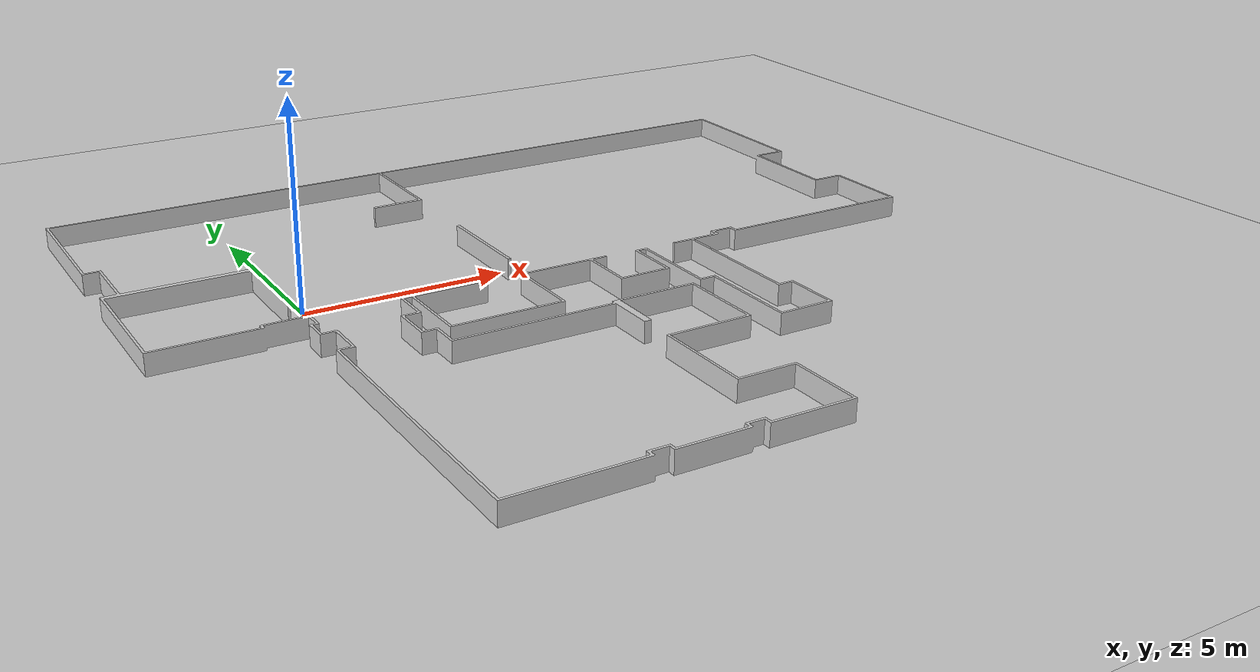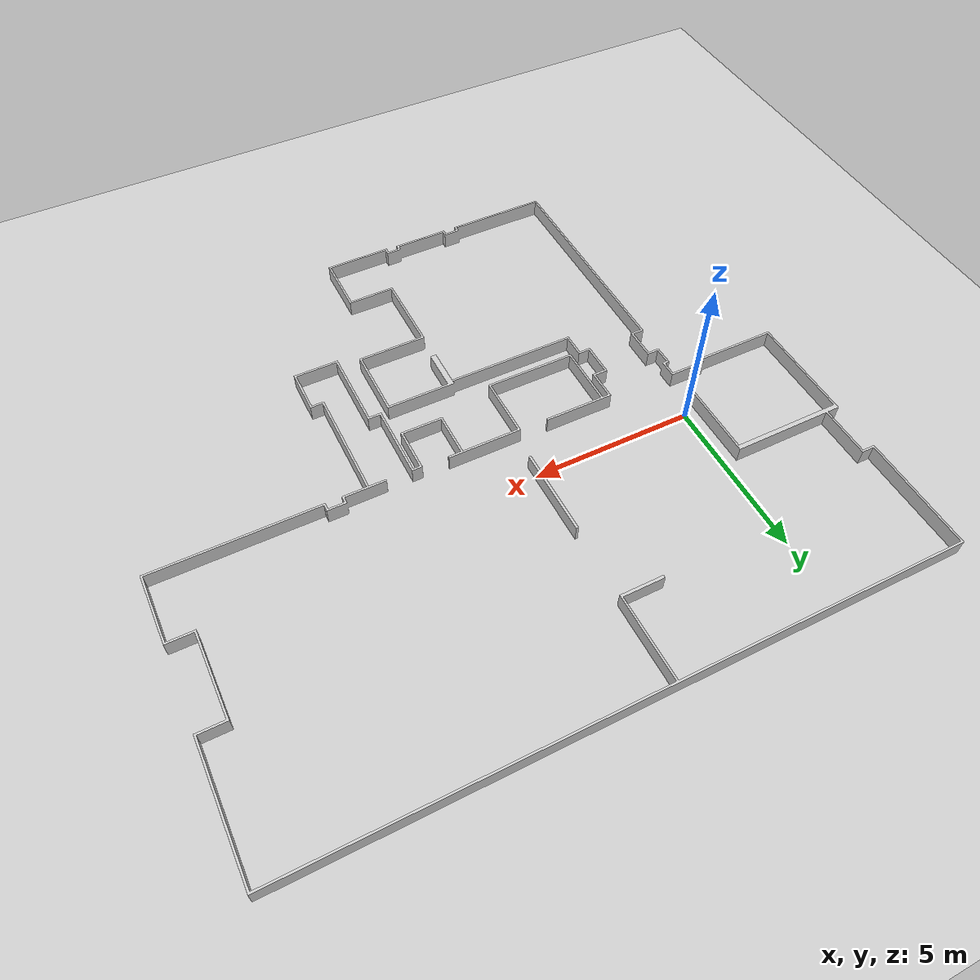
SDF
<?xml version="1.0" ?>

<sdf version="1.8">
  <world name="labfabex_world">

    <light name='sun' type='directional'>
      <cast_shadows>true</cast_shadows>
      <pose>0 0 100 0 0 0</pose>
      <diffuse>0.8 0.8 0.8 1</diffuse>
      <specular>0.2 0.2 0.2 1</specular>
      <attenuation>
        <range>1000</range>
        <constant>0.9</constant>
        <linear>0.01</linear>
        <quadratic>0.001</quadratic>
      </attenuation>
      <direction>-0.5 0.1 -0.9</direction>
    </light>

    <scene>
      <ambient>0.5 0.5 0.5 1</ambient>
      <background>0.7 0.7 0.7 1</background>
      <shadows>true</shadows>
    </scene>

    <gui fullscreen='0'>
      <camera name='user_camera'>
        <pose>10.5 -6.2 16.6 0 0.9 2.5</pose>
        <view_controller>orbit</view_controller>
        <projection_type>perspective</projection_type>
      </camera>
    </gui>

    <model name='ground_plane'>
      <static>true</static>
      <link name='link'>
        <pose>5.95 -1.6 0.0 0.0 0.0 0.0</pose>
        <collision name='collision'>
          <geometry>
            <plane>
              <normal>0 0 1</normal>
              <size>20.4 20.4</size>
            </plane>
          </geometry>
          <surface>
            <friction>
              <ode>
                <mu>100</mu>
                <mu2>50</mu2>
              </ode>
            </friction>
          </surface>
        </collision>
        <visual name='visual'>
          <cast_shadows>false</cast_shadows>
          <geometry>
            <plane>
              <normal>0 0 1</normal>
              <size>20.4 20.4</size>
            </plane>
          </geometry>
          <material>
            <script>
              <uri>file://map.material</uri>
              <name>map</name>
            </script>
          </material>
        </visual>
      </link>
    </model>

    <include>
      <uri>model://labfabex_walls</uri>
      <name>labfabex_walls_instance</name>
      <static>true</static>
      <pose>-3.936 7.245 0.0 0.0 0.0 0.0</pose>
    </include>

    <physics name='default_physics' type='dart'>
      <max_step_size>0.0125</max_step_size>
      <real_time_factor>1</real_time_factor>
      <real_time_update_rate>80</real_time_update_rate>
      <dart>
        <solver>
          <iterations>500</iterations>
          <tolerance>1e-4</tolerance>
        </solver>
      </dart>
    </physics>

  </world>
</sdf>

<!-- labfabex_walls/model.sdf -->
<sdf version="1.8">
  <model name="labfabex_walls">
    <static>true</static>
    <link name="link">
      <visual name="visual">
        <geometry>
          <mesh>
            <uri>meshes/labfabex_walls.dae</uri>
          </mesh>
        </geometry>
      </visual>
      <collision name="collision">
        <geometry>
          <mesh>
            <uri>meshes/labfabex_walls.dae</uri>
          </mesh>
        </geometry>
      </collision>
    </link>
  </model>
</sdf>
